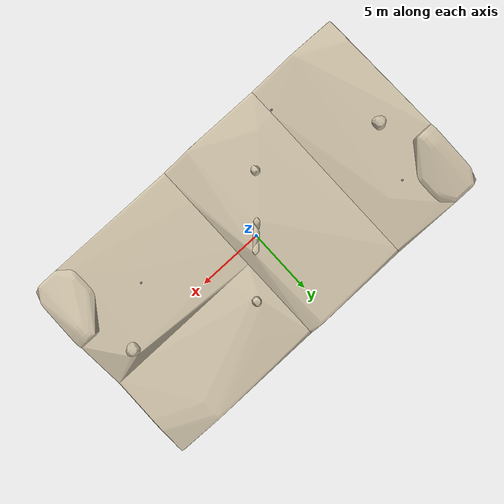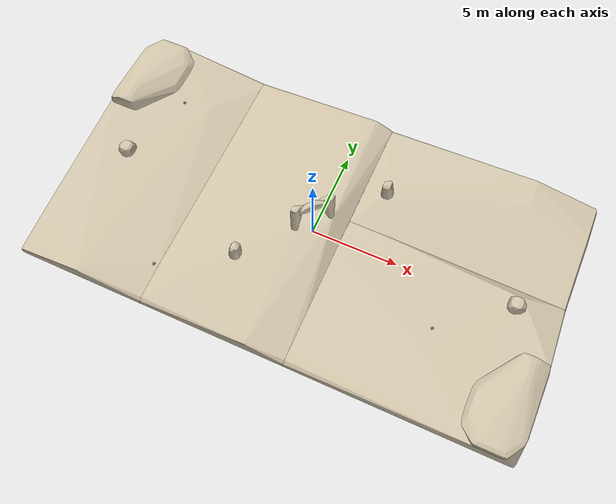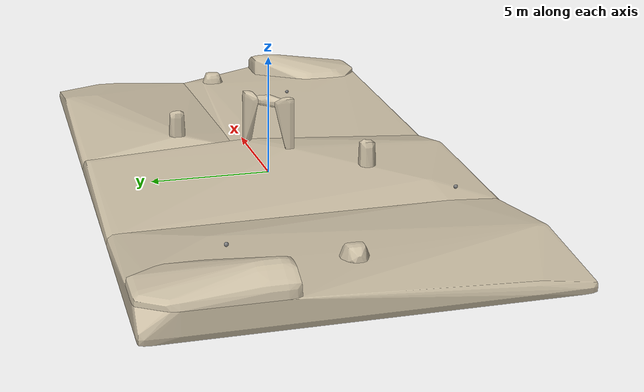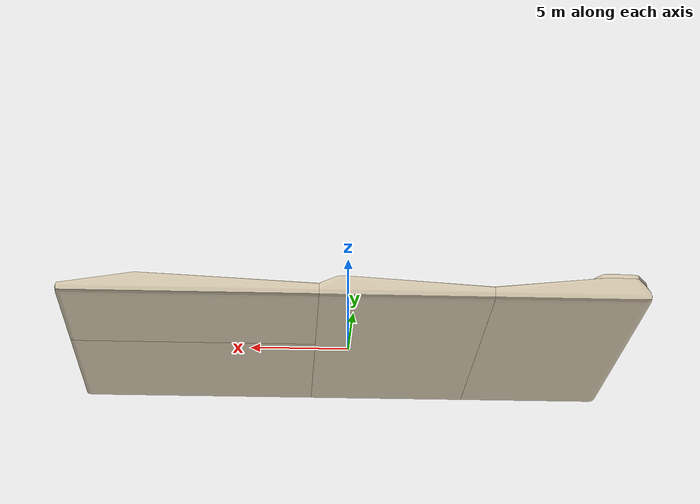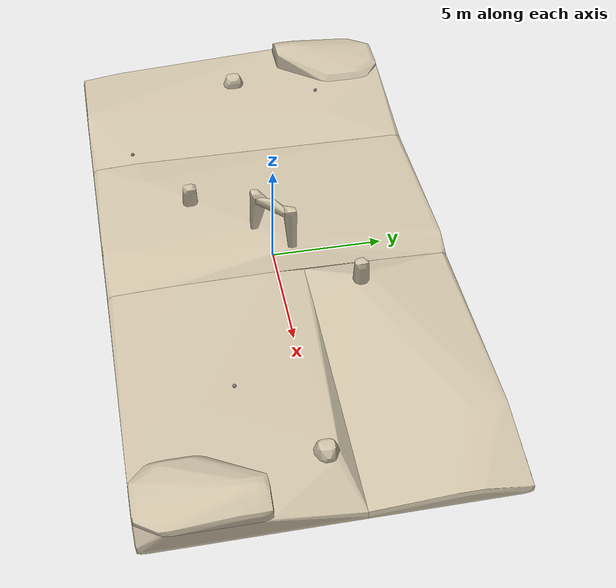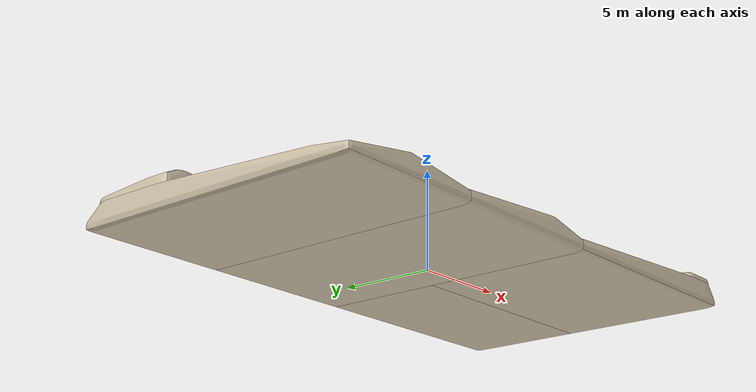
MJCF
<mujoco model="rmuc2026_convex">
  <option timestep="0.001"/>
  <asset>
    <mesh name="k_cvx_000" file="cvx_000.stl"/>
    <mesh name="k_cvx_001" file="cvx_001.stl"/>
    <mesh name="k_cvx_002" file="cvx_002.stl"/>
    <mesh name="k_cvx_003" file="cvx_003.stl"/>
    <mesh name="k_cvx_004" file="cvx_004.stl"/>
    <mesh name="k_cvx_005" file="cvx_005.stl"/>
    <mesh name="k_cvx_006" file="cvx_006.stl"/>
    <mesh name="k_cvx_007" file="cvx_007.stl"/>
    <mesh name="k_cvx_008" file="cvx_008.stl"/>
    <mesh name="k_cvx_009" file="cvx_009.stl"/>
    <mesh name="k_cvx_010" file="cvx_010.stl"/>
    <mesh name="k_cvx_011" file="cvx_011.stl"/>
    <mesh name="k_cvx_012" file="cvx_012.stl"/>
  </asset>
  <worldbody>
    <light pos="0 -10 12" dir="0 10 -12" diffuse="0.9 0.9 0.9"/>
    <geom name="k_cvx_000" mesh="k_cvx_000" friction="1.0" contype="1" conaffinity="1" rgba="0.8 0.75 0.65 0.9"/>
    <geom name="k_cvx_001" mesh="k_cvx_001" friction="1.0" contype="1" conaffinity="1" rgba="0.8 0.75 0.65 0.9"/>
    <geom name="k_cvx_002" mesh="k_cvx_002" friction="1.0" contype="1" conaffinity="1" rgba="0.8 0.75 0.65 0.9"/>
    <geom name="k_cvx_003" mesh="k_cvx_003" friction="1.0" contype="1" conaffinity="1" rgba="0.8 0.75 0.65 0.9"/>
    <geom name="k_cvx_004" mesh="k_cvx_004" friction="1.0" contype="1" conaffinity="1" rgba="0.8 0.75 0.65 0.9"/>
    <geom name="k_cvx_005" mesh="k_cvx_005" friction="1.0" contype="1" conaffinity="1" rgba="0.8 0.75 0.65 0.9"/>
    <geom name="k_cvx_006" mesh="k_cvx_006" friction="1.0" contype="1" conaffinity="1" rgba="0.8 0.75 0.65 0.9"/>
    <geom name="k_cvx_007" mesh="k_cvx_007" friction="1.0" contype="1" conaffinity="1" rgba="0.8 0.75 0.65 0.9"/>
    <geom name="k_cvx_008" mesh="k_cvx_008" friction="1.0" contype="1" conaffinity="1" rgba="0.8 0.75 0.65 0.9"/>
    <geom name="k_cvx_009" mesh="k_cvx_009" friction="1.0" contype="1" conaffinity="1" rgba="0.8 0.75 0.65 0.9"/>
    <geom name="k_cvx_010" mesh="k_cvx_010" friction="1.0" contype="1" conaffinity="1" rgba="0.8 0.75 0.65 0.9"/>
    <geom name="k_cvx_011" mesh="k_cvx_011" friction="1.0" contype="1" conaffinity="1" rgba="0.8 0.75 0.65 0.9"/>
    <geom name="k_cvx_012" mesh="k_cvx_012" friction="1.0" contype="1" conaffinity="1" rgba="0.8 0.75 0.65 0.9"/>
    <body name="p1" pos="-10 4 1.2"><freejoint/><geom type="sphere" size="0.08" mass="0.5"/></body>
    <body name="p2" pos="0 0 1.2"><freejoint/><geom type="sphere" size="0.08" mass="0.5"/></body>
    <body name="p3" pos="8 -3 1.2"><freejoint/><geom type="sphere" size="0.08" mass="0.5"/></body>
    <body name="p4" pos="-6.66 -5.66 1.2"><freejoint/><geom type="sphere" size="0.08" mass="0.5"/></body>
  </worldbody>
</mujoco>
